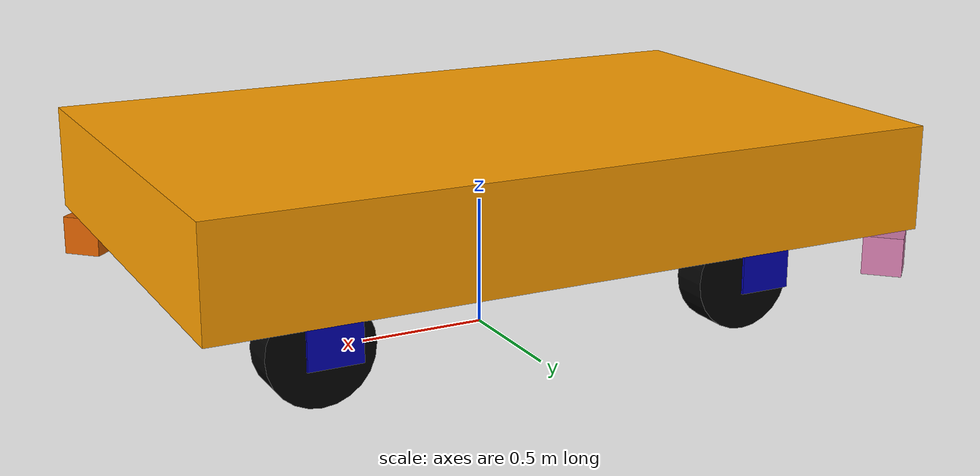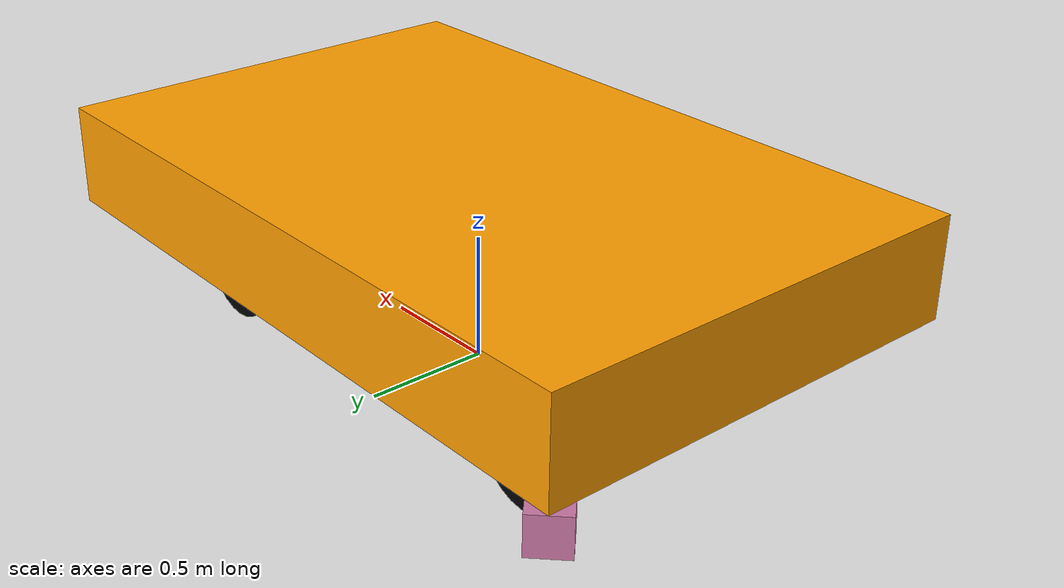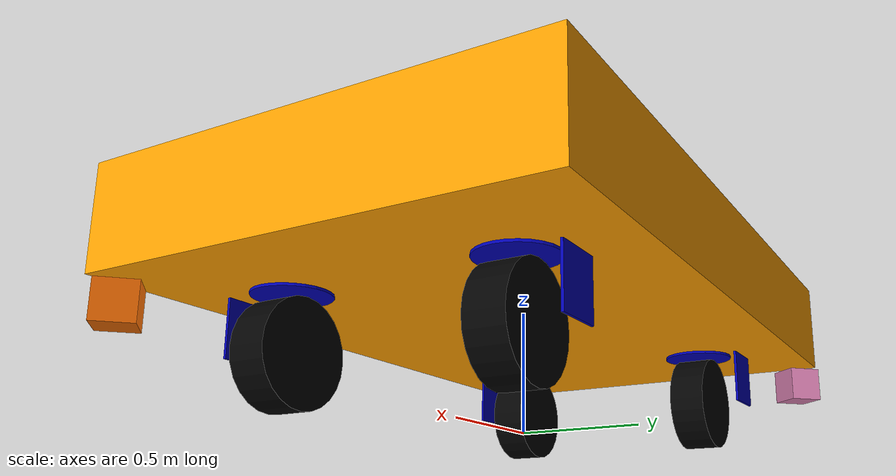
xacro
<?xml version="1.0" ?>
<robot name="zinger" xmlns:xacro="http://www.ros.org/wiki/xacro">

    <!-- CONSTANTS -->

    <!-- PACKAGE PATHS -->
    <xacro:property name="pkg_path" value="$(find amr_sim)"/>
    <xacro:property name="urdf_dir" value="${pkg_path}/description/hamr30"/>
    <xacro:property name="param_file" value="${pkg_path}/param/hamr30/swerve_control.yaml"/>

    <!-- Math -->
    <xacro:property name="PI" value="3.1415926535897931"/>

    <!-- ARGUMENTS -->
    <xacro:arg name="chassis_version" default="v1" />

    <!-- Chassis dimensions -->
    <xacro:property name="chassis_mass" value="1.0" /> <!-- arbitrary value for base mass -->
    <xacro:property name="chassis_length" value="2.8" />
    <xacro:property name="chassis_width" value="1.8" />
    <xacro:property name="chassis_height" value="0.4" />

    <!-- Suspension dimensions -->
    <xacro:property name="wheel_offset" value="0.01" />
    <xacro:property name="steering_mass" value="0.2" />
    <xacro:property name="steering_radius" value="0.15" />
    <xacro:property name="steering_thickness" value="0.01" />

    <!-- Wheel dimensions -->
    <xacro:property name="wheel_mass" value="0.2" />
    <xacro:property name="wheel_radius" value="0.205" />
    <xacro:property name="wheel_width" value="0.15" />
    <xacro:property name="wheel_base" value="1.756" />
    <xacro:property name="wheel_track" value="0.930" />

    <xacro:property name="front_x_reflect" value="1" />
    <xacro:property name="rear_x_reflect" value="-1" />

    <xacro:property name="left_y_reflect" value="1" />
    <xacro:property name="right_y_reflect" value="-1" />

    <!-- INCLUDES -->
    <xacro:include filename="${urdf_dir}/materials.xacro" />
    <xacro:include filename="${urdf_dir}/hamr30_macros.xacro" />
    <xacro:include filename="${urdf_dir}/hamr30_gazebo.xacro" />

    <!-- MODEL -->

    <!--
      An empty base footprint that describes the origin of the robot on the ground
    -->
    <link name="base_footprint">
    </link>

    <link name="laser_link"/>
    <joint name="laser_joint" type="fixed">
    <parent link="chassis_link"/>
    <child link="laser_link"/>
    <origin xyz="0 0 -0.3" rpy="0 0 0"/>
    </joint>

    <!--
      An empty base link that describes the origin of the robot at the c.o.g of the chassis
    -->
    <joint name="joint_base_to_footprint" type="fixed">
        <origin rpy="0 0 0"
            xyz="0 0 ${0.5 * chassis_height + 2 * wheel_radius + wheel_offset + steering_thickness}"/>
        <parent link="base_footprint"/>
        <child link="base_link"/>
    </joint>
    <link name="base_link">
    </link>

    <!--
        A box that pretends to be the ground. Used for testing that the scuttle model has been assembled correctly.
    -->

    <!-- The chassis of zinger -->
    <joint name="chassis_joint" type="fixed">
        <origin rpy="0 0 0" xyz="0.0 0 0.0"/>
        <parent link="base_link"/>
        <child link="chassis_link"/>
    </joint>

    <link name="chassis_link">
        <inertial>
            <origin rpy="0 0 0" xyz="0 0 0.0"/>
            <mass value="${chassis_mass}"/>
            <inertia
                ixx="${chassis_mass / 12.0 * (chassis_width * chassis_width + chassis_height * chassis_height)}"
                ixy="0"
                ixz="0"
                iyy="${chassis_mass / 12.0 * (chassis_length * chassis_length + chassis_height * chassis_height)}"
                iyz="0"
                izz="${chassis_mass / 12.0 * (chassis_length * chassis_length + chassis_width * chassis_width)}"/>
        </inertial>
        <visual>
            <origin rpy="0 0 0" xyz="0 0 0.0"/>
            <geometry>
                <box size="${chassis_length} ${chassis_width} ${chassis_height}" />
            </geometry>
            <material name="orange"/>
        </visual>
        <collision>
            <origin rpy="0 0 0" xyz="0 0 0.0"/>
            <geometry>
                <box size="${chassis_length} ${chassis_width} ${chassis_height}" />
            </geometry>
        </collision>
    </link>

    <!--
        Left front wheel assembly
    -->
    <xacro:drive_module_assembly
        name="left_front"
        chassis_length="${chassis_length}"
        chassis_width="${chassis_width}"
        chassis_height="${chassis_height}"
        wheel_mass="${wheel_mass}"
        wheel_radius="${wheel_radius}"
        wheel_width="${wheel_width}"
        wheel_base="${wheel_base}"
        wheel_track="${wheel_track}"
        steering_mass="${steering_mass}"
        steering_radius="${steering_radius}"
        steering_thickness="${steering_thickness}"
        offset="${wheel_offset}"
        x_reflect="${front_x_reflect}"
        y_reflect="${left_y_reflect}" />

    <!--
        Left rear wheel assembly
    -->
    <xacro:drive_module_assembly
        name="left_rear"
        chassis_length="${chassis_length}"
        chassis_width="${chassis_width}"
        chassis_height="${chassis_height}"
        wheel_mass="${wheel_mass}"
        wheel_radius="${wheel_radius}"
        wheel_width="${wheel_width}"
        wheel_base="${wheel_base}"
        wheel_track="${wheel_track}"
        steering_mass="${steering_mass}"
        steering_radius="${steering_radius}"
        steering_thickness="${steering_thickness}"
        offset="${wheel_offset}"
        x_reflect="${rear_x_reflect}"
        y_reflect="${left_y_reflect}" />

    <!--
        Right rear wheel assembly
    -->
    <xacro:drive_module_assembly
        name="right_rear"
        chassis_length="${chassis_length}"
        chassis_width="${chassis_width}"
        chassis_height="${chassis_height}"
        wheel_mass="${wheel_mass}"
        wheel_radius="${wheel_radius}"
        wheel_width="${wheel_width}"
        wheel_base="${wheel_base}"
        wheel_track="${wheel_track}"
        steering_mass="${steering_mass}"
        steering_radius="${steering_radius}"
        steering_thickness="${steering_thickness}"
        offset="${wheel_offset}"
        x_reflect="${rear_x_reflect}"
        y_reflect="${right_y_reflect}" />

    <!--
        Right front wheel assembly
    -->
    <xacro:drive_module_assembly
        name="right_front"
        chassis_length="${chassis_length}"
        chassis_width="${chassis_width}"
        chassis_height="${chassis_height}"
        wheel_mass="${wheel_mass}"
        wheel_radius="${wheel_radius}"
        wheel_width="${wheel_width}"
        wheel_base="${wheel_base}"
        wheel_track="${wheel_track}"
        steering_mass="${steering_mass}"
        steering_radius="${steering_radius}"
        steering_thickness="${steering_thickness}"
        offset="${wheel_offset}"
        x_reflect="${front_x_reflect}"
        y_reflect="${right_y_reflect}" />

    <ros2_control name="ZingerJointControl" type="system">
        <hardware>
            <plugin>gz_ros2_control/GazeboSimSystem</plugin>
        </hardware>
        <xacro:steering_module_controller name="left_front" />
        <xacro:steering_module_controller name="left_rear" />
        <xacro:steering_module_controller name="right_rear" />
        <xacro:steering_module_controller name="right_front" />
    </ros2_control>

    <!-- Sensors -->

    <!-- IMU -->
    <xacro:sensor_imu name="center" parent_link="chassis_link">
        <origin xyz="1.10689 0.22671 0.0" rpy="0.0 0.0 0.0"/>
    </xacro:sensor_imu>

    <!-- LIDAR -->
    <xacro:sensor_lidar name="front" parent_link="laser_link">
        <origin xyz="1.32195 -0.821395 0.0" rpy="0.0 0.0 -0.7854"/>
    </xacro:sensor_lidar>

    <xacro:sensor_lidar name="rear" parent_link="laser_link">
        <origin xyz="-1.32195 0.821395 0.0" rpy="0.0 0.0 2.35619"/>
    </xacro:sensor_lidar>

    <!-- Bump -->

    <!-- Sonar -->

    <!-- IR -->

    <!-- Cliff sensors -->
</robot>

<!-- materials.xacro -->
<robot name="ammr_sj" xmlns:xacro="http://www.ros.org/wiki/xacro" >
    <material name="black">
        <color rgba="0.01 0.01 0.01 1.000"/>
    </material>
    <material name="silver">
        <color rgba="0.700 0.700 0.700 1.000"/>
    </material>
    <material name="gray">
        <color rgba="0.250 0.250 0.250 1.000"/>
    </material>
    <material name="blue">
        <color rgba="0.000 0.000 0.700 1.000"/>
    </material>

    <material name="orange">
        <color rgba="1.000 0.624 0.000 1.000"/>
    </material>

    <material name="Red">
        <color rgba="1.0 0.0 0.0 1.0"/>
    </material>
</robot>

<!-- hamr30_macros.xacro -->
<robot name="zinger" xmlns:xacro="http://www.ros.org/wiki/xacro" >

    <xacro:macro name="wheel_assembly" params="name mass radius width offset">
        <joint name="joint_steering_to_wheel_${name}" type="continuous">
            <origin rpy="0 0 0" xyz="0 0 ${-1 * (radius + offset)}"/>
            <parent link="link_steering_${name}"/>
            <child link="link_wheel_${name}"/>
            <axis xyz="0.0 1.0 0.0"/>
        </joint>

        <link name="link_wheel_${name}">
            <inertial>
                <origin xyz="0 0 0" rpy="${PI/2} 0 0" />
                <mass value="${mass}"/>
                <inertia
                    ixx="${(mass/12) * (3*radius*radius + width*width)}"
                    ixy="0"
                    ixz="0"
                    iyy="${(mass/12) * (3*radius*radius + width*width)}"
                    iyz="0"
                    izz="${(mass/2) * (radius*radius)}"/>
            </inertial>
            <visual>
                <origin rpy="${PI/2} 0 0" xyz="0 0 0"/>
                <geometry>
                    <cylinder length="${width}" radius="${radius}" />
                </geometry>
                <material name="black"/>
            </visual>
            <collision>
                <origin rpy="${PI/2} 0 0" xyz="0 0 0"/>
                <geometry>
                    <cylinder length="${width}" radius="${radius}" />
                </geometry>
            </collision>
        </link>
    </xacro:macro>

    <xacro:macro name="steering_assembly" params="name mass chassis_length chassis_width chassis_height steering_radius thickness wheel_radius wheel_base wheel_track offset x_reflect y_reflect">
        <joint name="joint_chassis_to_steering_${name}" type="continuous">
            <origin rpy="0 0 0" xyz="${x_reflect * (0.5 * wheel_base)} ${y_reflect * (0.5 * wheel_track)} ${-1 * 0.5 * chassis_height - 0.5 * thickness}"/>
            <parent link="chassis_link"/>
            <child link="link_steering_${name}"/>
            <axis xyz="0.0 0.0 1.0"/>
        </joint>

        <link name="link_steering_${name}">
            <inertial>
                <origin xyz="0 0 0" rpy="0 0 0" />
                <mass value="${mass}"/>
                <inertia
                    ixx="${(mass/12) * (3*steering_radius*steering_radius + thickness*thickness)}"
                    ixy="0"
                    ixz="0"
                    iyy="${(mass/12) * (3*steering_radius*steering_radius + thickness*thickness)}"
                    iyz="0"
                    izz="${(mass/2) * (steering_radius*steering_radius)}"/>
            </inertial>

            <visual>
                <origin rpy="0 0 0" xyz="0 0 0"/>
                <geometry>
                    <cylinder length="${thickness}" radius="${steering_radius}" />
                </geometry>
                <material name="blue"/>
            </visual>
            <collision>
                <origin rpy="0 0 0" xyz="0 0 0"/>
                <geometry>
                    <cylinder length="${thickness}" radius="${steering_radius}" />
                </geometry>
            </collision>

            <visual>
                <origin rpy="0 0 0" xyz="0 ${y_reflect * wheel_radius} ${-1 * 0.5 * (thickness + wheel_radius + 2 * offset)}"/>
                <geometry>
                    <box size="${wheel_radius} 0.01 ${wheel_radius + 2 * offset}" />
                </geometry>
                <material name="blue"/>
            </visual>
            <collision>
                <origin rpy="0 0 0" xyz="0 ${y_reflect * wheel_radius} ${-1 * 0.5 * (thickness + wheel_radius + 2 * offset)}"/>
                <geometry>
                    <box size="${wheel_radius} 0.01 ${wheel_radius + 2 * offset}" />
                </geometry>
            </collision>
        </link>
    </xacro:macro>

    <xacro:macro name="drive_module_assembly" params="name chassis_length chassis_width chassis_height wheel_mass wheel_radius wheel_width wheel_base wheel_track steering_mass steering_radius steering_thickness offset x_reflect y_reflect">
        <xacro:steering_assembly
            name="${name}"
            mass="${steering_mass}"
            chassis_length="${chassis_length}"
            chassis_width="${chassis_width}"
            chassis_height="${chassis_height}"
            wheel_base="${wheel_base}"
            wheel_track="${wheel_track}"
            steering_radius="${steering_radius}"
            thickness="${steering_thickness}"
            wheel_radius="${wheel_radius}"
            offset="${offset}"
            x_reflect="${x_reflect}"
            y_reflect="${y_reflect}"/>
        <xacro:wheel_assembly
            name="${name}"
            mass="${wheel_mass}"
            radius="${wheel_radius}"
            width="${wheel_width}"
            offset="${offset + 0.5 * steering_thickness}"/>
    </xacro:macro>

    <!-- CONTROLLERS -->
    <xacro:macro name="steering_module_controller" params="name">
        <joint name="joint_chassis_to_steering_${name}">
            <command_interface name="position">
                <param name="min">-${2 * PI}</param>
                <param name="max">${2 * PI}</param>
            </command_interface>
            <state_interface name="position"/>
            <state_interface name="velocity"/>
            <state_interface name="acceleration"/>
        </joint>
        <joint name="joint_steering_to_wheel_${name}">
            <command_interface name="velocity">
                <param name="min">-1</param>
                <param name="max">1</param>
            </command_interface>
            <state_interface name="position"/>
            <state_interface name="velocity"/>
            <state_interface name="acceleration"/>
        </joint>
    </xacro:macro>

    <!-- SENSORS -->
    <!-- IMU sensor -->
    <xacro:macro name="sensor_imu" params="name parent_link *origin">
        <xacro:property name="mass"     value="0.01"/>
        <xacro:property name="length_x" value="0.01" />
        <xacro:property name="length_y" value="0.01" />
        <xacro:property name="length_z" value="0.01" />

        <xacro:property name="collision_x_offset" value="0.005" />
        <xacro:property name="collision_y_offset" value="0.005" />
        <xacro:property name="collision_z_offset" value="${0.5 * length_z}" />

        <joint name="joint_body_to_sensor_imu_${name}" type="fixed">
            <xacro:insert_block name="origin"/>
            <parent link="${parent_link}"/>
            <child link="link_sensor_imu_${name}"/>
        </joint>

        <link name="link_sensor_imu_${name}">
            <visual>
                <origin xyz="${collision_x_offset} ${collision_y_offset} ${collision_z_offset}"/>
                <geometry>
                    <box size="${length_x} ${length_y} ${length_z}"/>
                </geometry>
            </visual>
            <collision>
                <origin xyz="${collision_x_offset} ${collision_y_offset} ${collision_z_offset}"/>
                <geometry>
                    <box size="${length_x} ${length_y} ${length_z}"/>
                </geometry>
            </collision>
            <inertial>
                <mass value="${mass}" />
                <xacro:insert_block name="origin"/>
                <inertia
                    ixx="${(1/12) * mass * (length_y*length_y + length_z*length_z)}"
                    ixy="0.0"
                    ixz="0.0"
                    iyy="${(1/12) * mass * (length_x*length_x + length_z*length_z)}"
                    iyz="0.0"
                    izz="${(1/12) * mass * (length_x*length_x + length_y*length_y)}" />
            </inertial>
        </link>
    </xacro:macro>

    <!-- Lidar sensor -->
    <xacro:macro name="sensor_lidar" params="name parent_link *origin">

        <xacro:property name="mass"     value="1.0"/>
        <xacro:property name="length_x" value="0.15" />
        <xacro:property name="length_y" value="0.15" />
        <xacro:property name="length_z" value="0.15" />

        <xacro:property name="collision_x_offset" value="0" />
        <xacro:property name="collision_y_offset" value="0" />
        <xacro:property name="collision_z_offset" value="0" />

        <joint name="joint_body_to_sensor_lidar_${name}" type="fixed">
            <xacro:insert_block name="origin"/>
            <parent link="${parent_link}"/>
            <child link="link_sensor_lidar_${name}"/>
        </joint>

        <link name="link_sensor_lidar_${name}">
            <visual>
                <origin rpy="0.0 0.0 0.0" xyz="0.0 0.0 0.0"/>
                <geometry>
                    <box size="${length_x} ${length_y} ${length_z}"/>
                </geometry>
            </visual>
            <collision>
                <origin rpy="0.0 0.0 0.0" xyz="0.0 0.0 0.0"/>
                <geometry>
                    <box size="${length_x} ${length_y} ${length_z}"/>
                </geometry>
            </collision>
            <inertial>
                <mass value="${mass}" />
                <origin rpy="0.0 0.0 0.0" xyz="0.0 0.0 0.0"/>
                <inertia
                    ixx="${(1/12) * mass * (length_y*length_y + length_z*length_z)}"
                    ixy="0.0"
                    ixz="0.0"
                    iyy="${(1/12) * mass * (length_x*length_x + length_z*length_z)}"
                    iyz="0.0"
                    izz="${(1/12) * mass * (length_x*length_x + length_y*length_y)}" />
            </inertial>
        </link>
    </xacro:macro>

    <!-- Bump sensor -->

    <!-- Sonar sensor -->

    <!-- IR sensor -->

</robot>
